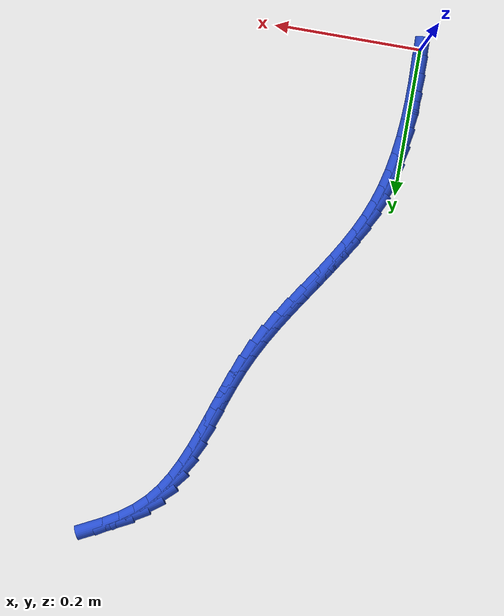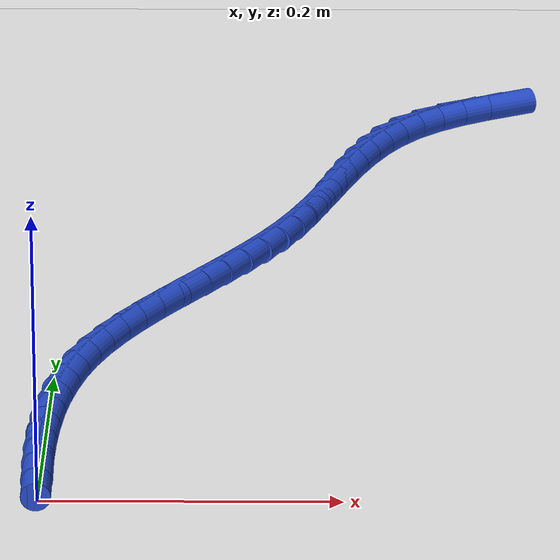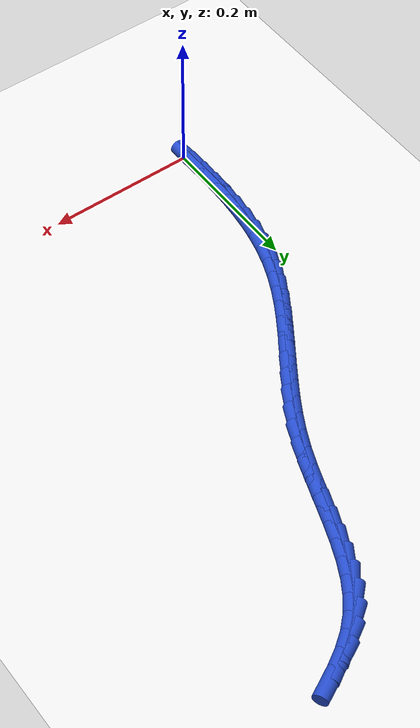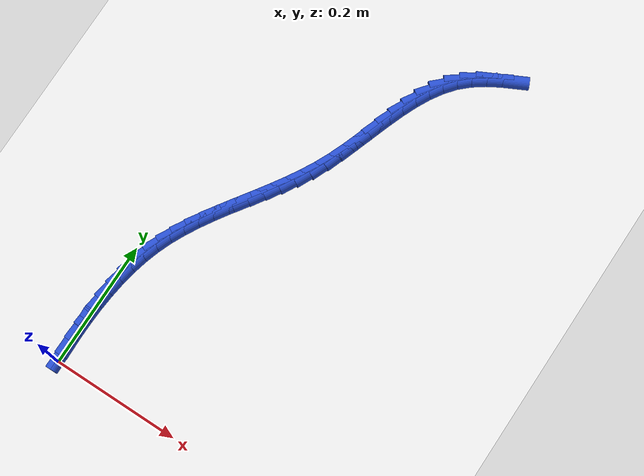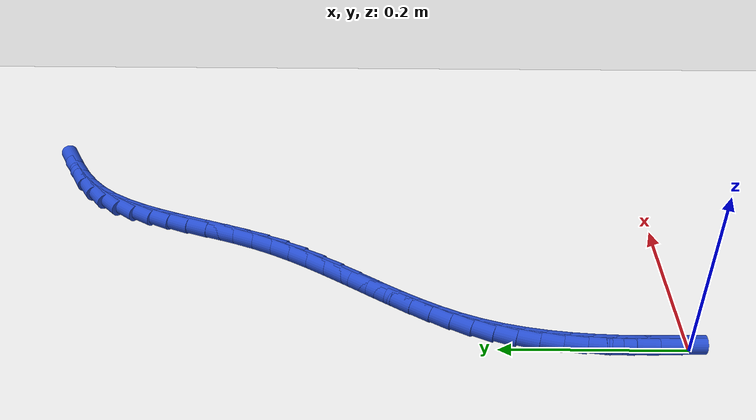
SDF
<sdf version="1.6">
 <world name="default">
  <model name="ground_plane">
   <static>1</static>
   <link name="link">
    <collision name="collision">
     <geometry><plane><normal>0 0 1</normal><size>100 100</size></plane></geometry>
     <surface><friction><ode><mu>100</mu><mu2>50</mu2></ode></friction></surface>
    </collision>
    <visual name="visual">
     <cast_shadows>0</cast_shadows>
     <geometry><plane><normal>0 0 1</normal><size>100 100</size></plane></geometry>
     <material>
      <script><uri>file://media/materials/scripts/gazebo.material</uri><name>Gazebo/WhiteGlow</name></script>
     </material>
    </visual>
   </link>
  </model>
  <model name="line">
   <link name="link_1">
    <pose>-0.0008799934208136524 0.02442746269897507 0.01 0 1.57 -1.5570395334797742</pose>
    <collision name="collision">
     <geometry><cylinder><radius>0.01</radius><length>0.08</length></cylinder></geometry>
    </collision>
    <visual name="visual">
     <material>
      <script><name>Gazebo/Blue</name><uri>file://media/materials/scripts/gazebo.material</uri></script>
     </material>
     <geometry><cylinder><radius>0.01</radius><length>0.08</length></cylinder></geometry>
    </visual>
   </link>
   <link name="link_2">
    <pose>-0.0012180630915780506 0.04900065619413731 0.01 0 1.57 1.5571608358764597</pose>
    <collision name="collision">
     <geometry><cylinder><radius>0.01</radius><length>0.08</length></cylinder></geometry>
    </collision>
    <visual name="visual">
     <material>
      <script><name>Gazebo/Blue</name><uri>file://media/materials/scripts/gazebo.material</uri></script>
     </material>
     <geometry><cylinder><radius>0.01</radius><length>0.08</length></cylinder></geometry>
    </visual>
   </link>
   <link name="link_3">
    <pose>-0.0008824679000233301 0.07361102003155427 0.01 0 1.57 1.524332283293334</pose>
    <collision name="collision">
     <geometry><cylinder><radius>0.01</radius><length>0.08</length></cylinder></geometry>
    </collision>
    <visual name="visual">
     <material>
      <script><name>Gazebo/Blue</name><uri>file://media/materials/scripts/gazebo.material</uri></script>
     </material>
     <geometry><cylinder><radius>0.01</radius><length>0.08</length></cylinder></geometry>
    </visual>
   </link>
   <link name="link_4">
    <pose>0.00025853326612037923 0.0981499937572934 0.01 0 1.57 1.4856891240640355</pose>
    <collision name="collision">
     <geometry><cylinder><radius>0.01</radius><length>0.08</length></cylinder></geometry>
    </collision>
    <visual name="visual">
     <material>
      <script><name>Gazebo/Blue</name><uri>file://media/materials/scripts/gazebo.material</uri></script>
     </material>
     <geometry><cylinder><radius>0.01</radius><length>0.08</length></cylinder></geometry>
    </visual>
   </link>
   <link name="link_5">
    <pose>0.0023366815191229492 0.12250901691742223 0.01 0 1.57 1.44079133324287</pose>
    <collision name="collision">
     <geometry><cylinder><radius>0.01</radius><length>0.08</length></cylinder></geometry>
    </collision>
    <visual name="visual">
     <material>
      <script><name>Gazebo/Blue</name><uri>file://media/materials/scripts/gazebo.material</uri></script>
     </material>
     <geometry><cylinder><radius>0.01</radius><length>0.08</length></cylinder></geometry>
    </visual>
   </link>
   <link name="link_6">
    <pose>0.00548371797125425 0.14657952905800825 0.01 0 1.57 1.389168631819509</pose>
    <collision name="collision">
     <geometry><cylinder><radius>0.01</radius><length>0.08</length></cylinder></geometry>
    </collision>
    <visual name="visual">
     <material>
      <script><name>Gazebo/Blue</name><uri>file://media/materials/scripts/gazebo.material</uri></script>
     </material>
     <geometry><cylinder><radius>0.01</radius><length>0.08</length></cylinder></geometry>
    </visual>
   </link>
   <link name="link_7">
    <pose>0.009831383734784146 0.1702529697251189 0.01 0 1.57 1.3303693170853053</pose>
    <collision name="collision">
     <geometry><cylinder><radius>0.01</radius><length>0.08</length></cylinder></geometry>
    </collision>
    <visual name="visual">
     <material>
      <script><name>Gazebo/Blue</name><uri>file://media/materials/scripts/gazebo.material</uri></script>
     </material>
     <geometry><cylinder><radius>0.01</radius><length>0.08</length></cylinder></geometry>
    </visual>
   </link>
   <link name="link_8">
    <pose>0.015511419921982517 0.19342077846482172 0.01 0 1.57 1.2640325954095852</pose>
    <collision name="collision">
     <geometry><cylinder><radius>0.01</radius><length>0.08</length></cylinder></geometry>
    </collision>
    <visual name="visual">
     <material>
      <script><name>Gazebo/Blue</name><uri>file://media/materials/scripts/gazebo.material</uri></script>
     </material>
     <geometry><cylinder><radius>0.01</radius><length>0.08</length></cylinder></geometry>
    </visual>
   </link>
   <link name="link_9">
    <pose>0.022655567645119223 0.21597439482318412 0.01 0 1.57 1.1911125752542058</pose>
    <collision name="collision">
     <geometry><cylinder><radius>0.01</radius><length>0.08</length></cylinder></geometry>
    </collision>
    <visual name="visual">
     <material>
      <script><name>Gazebo/Blue</name><uri>file://media/materials/scripts/gazebo.material</uri></script>
     </material>
     <geometry><cylinder><radius>0.01</radius><length>0.08</length></cylinder></geometry>
    </visual>
   </link>
   <link name="link_10">
    <pose>0.0313729467780515 0.23781994056765074 0.01 0 1.57 1.1234086189482186</pose>
    <collision name="collision">
     <geometry><cylinder><radius>0.01</radius><length>0.08</length></cylinder></geometry>
    </collision>
    <visual name="visual">
     <material>
      <script><name>Gazebo/Blue</name><uri>file://media/materials/scripts/gazebo.material</uri></script>
     </material>
     <geometry><cylinder><radius>0.01</radius><length>0.08</length></cylinder></geometry>
    </visual>
   </link>
   <link name="link_11">
    <pose>0.04154222121569546 0.25901311396712695 0.01 0 1.57 1.0683558751640316</pose>
    <collision name="collision">
     <geometry><cylinder><radius>0.01</radius><length>0.08</length></cylinder></geometry>
    </collision>
    <visual name="visual">
     <material>
      <script><name>Gazebo/Blue</name><uri>file://media/materials/scripts/gazebo.material</uri></script>
     </material>
     <geometry><cylinder><radius>0.01</radius><length>0.08</length></cylinder></geometry>
    </visual>
   </link>
   <link name="link_12">
    <pose>0.05290748553909749 0.2796969549479801 0.01 0 1.57 1.0263164397584597</pose>
    <collision name="collision">
     <geometry><cylinder><radius>0.01</radius><length>0.08</length></cylinder></geometry>
    </collision>
    <visual name="visual">
     <material>
      <script><name>Gazebo/Blue</name><uri>file://media/materials/scripts/gazebo.material</uri></script>
     </material>
     <geometry><cylinder><radius>0.01</radius><length>0.08</length></cylinder></geometry>
    </visual>
   </link>
   <link name="link_13">
    <pose>0.06521114805718943 0.30001559790452914 0.01 0 1.57 0.9971879001701517</pose>
    <collision name="collision">
     <geometry><cylinder><radius>0.01</radius><length>0.08</length></cylinder></geometry>
    </collision>
    <visual name="visual">
     <material>
      <script><name>Gazebo/Blue</name><uri>file://media/materials/scripts/gazebo.material</uri></script>
     </material>
     <geometry><cylinder><radius>0.01</radius><length>0.08</length></cylinder></geometry>
    </visual>
   </link>
   <link name="link_14">
    <pose>0.07819561707890317 0.32011317723109406 0.01 0 1.57 0.9807016805812409</pose>
    <collision name="collision">
     <geometry><cylinder><radius>0.01</radius><length>0.08</length></cylinder></geometry>
    </collision>
    <visual name="visual">
     <material>
      <script><name>Gazebo/Blue</name><uri>file://media/materials/scripts/gazebo.material</uri></script>
     </material>
     <geometry><cylinder><radius>0.01</radius><length>0.08</length></cylinder></geometry>
    </visual>
   </link>
   <link name="link_15">
    <pose>0.0916033009131706 0.3401338273219942 0.01 0 1.57 0.9765678655862139</pose>
    <collision name="collision">
     <geometry><cylinder><radius>0.01</radius><length>0.08</length></cylinder></geometry>
    </collision>
    <visual name="visual">
     <material>
      <script><name>Gazebo/Blue</name><uri>file://media/materials/scripts/gazebo.material</uri></script>
     </material>
     <geometry><cylinder><radius>0.01</radius><length>0.08</length></cylinder></geometry>
    </visual>
   </link>
   <link name="link_16">
    <pose>0.10517660786892358 0.360221682571549 0.01 0 1.57 0.9845507665978943</pose>
    <collision name="collision">
     <geometry><cylinder><radius>0.01</radius><length>0.08</length></cylinder></geometry>
    </collision>
    <visual name="visual">
     <material>
      <script><name>Gazebo/Blue</name><uri>file://media/materials/scripts/gazebo.material</uri></script>
     </material>
     <geometry><cylinder><radius>0.01</radius><length>0.08</length></cylinder></geometry>
    </visual>
   </link>
   <link name="link_17">
    <pose>0.11865794625509402 0.3805208773740781 0.01 0 1.57 1.0044842572842192</pose>
    <collision name="collision">
     <geometry><cylinder><radius>0.01</radius><length>0.08</length></cylinder></geometry>
    </collision>
    <visual name="visual">
     <material>
      <script><name>Gazebo/Blue</name><uri>file://media/materials/scripts/gazebo.material</uri></script>
     </material>
     <geometry><cylinder><radius>0.01</radius><length>0.08</length></cylinder></geometry>
    </visual>
   </link>
   <link name="link_18">
    <pose>0.13178972438061373 0.40117554612390083 0.01 0 1.57 1.0362346468489319</pose>
    <collision name="collision">
     <geometry><cylinder><radius>0.01</radius><length>0.08</length></cylinder></geometry>
    </collision>
    <visual name="visual">
     <material>
      <script><name>Gazebo/Blue</name><uri>file://media/materials/scripts/gazebo.material</uri></script>
     </material>
     <geometry><cylinder><radius>0.01</radius><length>0.08</length></cylinder></geometry>
    </visual>
   </link>
   <link name="link_19">
    <pose>0.1443143505544146 0.42232982321533674 0.01 0 1.57 1.0796157289752024</pose>
    <collision name="collision">
     <geometry><cylinder><radius>0.01</radius><length>0.08</length></cylinder></geometry>
    </collision>
    <visual name="visual">
     <material>
      <script><name>Gazebo/Blue</name><uri>file://media/materials/scripts/gazebo.material</uri></script>
     </material>
     <geometry><cylinder><radius>0.01</radius><length>0.08</length></cylinder></geometry>
    </visual>
   </link>
   <link name="link_20">
    <pose>0.1559742330854286 0.44412784304270536 0.01 0 1.57 1.134026885642316</pose>
    <collision name="collision">
     <geometry><cylinder><radius>0.01</radius><length>0.08</length></cylinder></geometry>
    </collision>
    <visual name="visual">
     <material>
      <script><name>Gazebo/Blue</name><uri>file://media/materials/scripts/gazebo.material</uri></script>
     </material>
     <geometry><cylinder><radius>0.01</radius><length>0.08</length></cylinder></geometry>
    </visual>
   </link>
   <link name="link_21">
    <pose>0.16651658963488622 0.4667102219870624 0.01 0 1.57 1.186977805018994</pose>
    <collision name="collision">
     <geometry><cylinder><radius>0.01</radius><length>0.08</length></cylinder></geometry>
    </collision>
    <visual name="visual">
     <material>
      <script><name>Gazebo/Blue</name><uri>file://media/materials/scripts/gazebo.material</uri></script>
     </material>
     <geometry><cylinder><radius>0.01</radius><length>0.08</length></cylinder></geometry>
    </visual>
   </link>
   <link name="link_22">
    <pose>0.1759366910279049 0.4900361269812874 0.01 0 1.57 1.2214753635690403</pose>
    <collision name="collision">
     <geometry><cylinder><radius>0.01</radius><length>0.08</length></cylinder></geometry>
    </collision>
    <visual name="visual">
     <material>
      <script><name>Gazebo/Blue</name><uri>file://media/materials/scripts/gazebo.material</uri></script>
     </material>
     <geometry><cylinder><radius>0.01</radius><length>0.08</length></cylinder></geometry>
    </visual>
   </link>
   <link name="link_23">
    <pose>0.18459264817947837 0.5137993095406426 0.01 0 1.57 1.236992576579386</pose>
    <collision name="collision">
     <geometry><cylinder><radius>0.01</radius><length>0.08</length></cylinder></geometry>
    </collision>
    <visual name="visual">
     <material>
      <script><name>Gazebo/Blue</name><uri>file://media/materials/scripts/gazebo.material</uri></script>
     </material>
     <geometry><cylinder><radius>0.01</radius><length>0.08</length></cylinder></geometry>
    </visual>
   </link>
   <link name="link_24">
    <pose>0.19287138479466207 0.537672444791865 0.01 0 1.57 1.2337855205060173</pose>
    <collision name="collision">
     <geometry><cylinder><radius>0.01</radius><length>0.08</length></cylinder></geometry>
    </collision>
    <visual name="visual">
     <material>
      <script><name>Gazebo/Blue</name><uri>file://media/materials/scripts/gazebo.material</uri></script>
     </material>
     <geometry><cylinder><radius>0.01</radius><length>0.08</length></cylinder></geometry>
    </visual>
   </link>
   <link name="link_25">
    <pose>0.2011598245785113 0.5613282078616916 0.01 0 1.57 1.2113271992038253</pose>
    <collision name="collision">
     <geometry><cylinder><radius>0.01</radius><length>0.08</length></cylinder></geometry>
    </collision>
    <visual name="visual">
     <material>
      <script><name>Gazebo/Blue</name><uri>file://media/materials/scripts/gazebo.material</uri></script>
     </material>
     <geometry><cylinder><radius>0.01</radius><length>0.08</length></cylinder></geometry>
    </visual>
   </link>
   <link name="link_26">
    <pose>0.20984489123608158 0.5844392738768591 0.01 0 1.57 1.1682774912918</pose>
    <collision name="collision">
     <geometry><cylinder><radius>0.01</radius><length>0.08</length></cylinder></geometry>
    </collision>
    <visual name="visual">
     <material>
      <script><name>Gazebo/Blue</name><uri>file://media/materials/scripts/gazebo.material</uri></script>
     </material>
     <geometry><cylinder><radius>0.01</radius><length>0.08</length></cylinder></geometry>
    </visual>
   </link>
   <link name="link_27">
    <pose>0.21931350847242823 0.6066783179641042 0.01 0 1.57 1.102624989114232</pose>
    <collision name="collision">
     <geometry><cylinder><radius>0.01</radius><length>0.08</length></cylinder></geometry>
    </collision>
    <visual name="visual">
     <material>
      <script><name>Gazebo/Blue</name><uri>file://media/materials/scripts/gazebo.material</uri></script>
     </material>
     <geometry><cylinder><radius>0.01</radius><length>0.08</length></cylinder></geometry>
    </visual>
   </link>
   <link name="link_28">
    <pose>0.22995259999260664 0.6277180152501639 0.01 0 1.57 1.012165742764886</pose>
    <collision name="collision">
     <geometry><cylinder><radius>0.01</radius><length>0.08</length></cylinder></geometry>
    </collision>
    <visual name="visual">
     <material>
      <script><name>Gazebo/Blue</name><uri>file://media/materials/scripts/gazebo.material</uri></script>
     </material>
     <geometry><cylinder><radius>0.01</radius><length>0.08</length></cylinder></geometry>
    </visual>
   </link>
   <link name="link_29">
    <pose>0.2421490895016723 0.6472310408617751 0.01 0 1.57 0.8955863764980082</pose>
    <collision name="collision">
     <geometry><cylinder><radius>0.01</radius><length>0.08</length></cylinder></geometry>
    </collision>
    <visual name="visual">
     <material>
      <script><name>Gazebo/Blue</name><uri>file://media/materials/scripts/gazebo.material</uri></script>
     </material>
     <geometry><cylinder><radius>0.01</radius><length>0.08</length></cylinder></geometry>
    </visual>
   </link>
   <link name="link_30">
    <pose>0.25628990070468044 0.6648900699256743 0.01 0 1.57 0.7562515798991263</pose>
    <collision name="collision">
     <geometry><cylinder><radius>0.01</radius><length>0.08</length></cylinder></geometry>
    </collision>
    <visual name="visual">
     <material>
      <script><name>Gazebo/Blue</name><uri>file://media/materials/scripts/gazebo.material</uri></script>
     </material>
     <geometry><cylinder><radius>0.01</radius><length>0.08</length></cylinder></geometry>
    </visual>
   </link>
   <link name="link_31">
    <pose>0.2727296673933222 0.6803983951115162 0.01 0 1.57 0.6271028827277211</pose>
    <collision name="collision">
     <geometry><cylinder><radius>0.01</radius><length>0.08</length></cylinder></geometry>
    </collision>
    <visual name="visual">
     <material>
      <script><name>Gazebo/Blue</name><uri>file://media/materials/scripts/gazebo.material</uri></script>
     </material>
     <geometry><cylinder><radius>0.01</radius><length>0.08</length></cylinder></geometry>
    </visual>
   </link>
   <link name="link_32">
    <pose>0.2913592825335145 0.6938990316882535 0.01 0 1.57 0.5312506755514216</pose>
    <collision name="collision">
     <geometry><cylinder><radius>0.01</radius><length>0.08</length></cylinder></geometry>
    </collision>
    <visual name="visual">
     <material>
      <script><name>Gazebo/Blue</name><uri>file://media/materials/scripts/gazebo.material</uri></script>
     </material>
     <geometry><cylinder><radius>0.01</radius><length>0.08</length></cylinder></geometry>
    </visual>
   </link>
   <link name="link_33">
    <pose>0.3117223252994584 0.7058643205196048 0.01 0 1.57 0.46713311786602135</pose>
    <collision name="collision">
     <geometry><cylinder><radius>0.01</radius><length>0.08</length></cylinder></geometry>
    </collision>
    <visual name="visual">
     <material>
      <script><name>Gazebo/Blue</name><uri>file://media/materials/scripts/gazebo.material</uri></script>
     </material>
     <geometry><cylinder><radius>0.01</radius><length>0.08</length></cylinder></geometry>
    </visual>
   </link>
   <link name="link_281">
    <pose>-0.0008982868988265858 0.024454817019344863 0.01 0 1.57 -1.5519764146701964</pose>
    <collision name="collision">
     <geometry><cylinder><radius>0.01</radius><length>0.08</length></cylinder></geometry>
    </collision>
    <visual name="visual">
     <material>
      <script><name>Gazebo/Blue</name><uri>file://media/materials/scripts/gazebo.material</uri></script>
     </material>
     <geometry><cylinder><radius>0.01</radius><length>0.08</length></cylinder></geometry>
    </visual>
   </link>
   <link name="link_282">
    <pose>-0.0013644109156815902 0.04921949075709657 0.01 0 1.57 -1.5430824768245834</pose>
    <collision name="collision">
     <geometry><cylinder><radius>0.01</radius><length>0.08</length></cylinder></geometry>
    </collision>
    <visual name="visual">
     <material>
      <script><name>Gazebo/Blue</name><uri>file://media/materials/scripts/gazebo.material</uri></script>
     </material>
     <geometry><cylinder><radius>0.01</radius><length>0.08</length></cylinder></geometry>
    </visual>
   </link>
  </model>
 </world>
</sdf>
